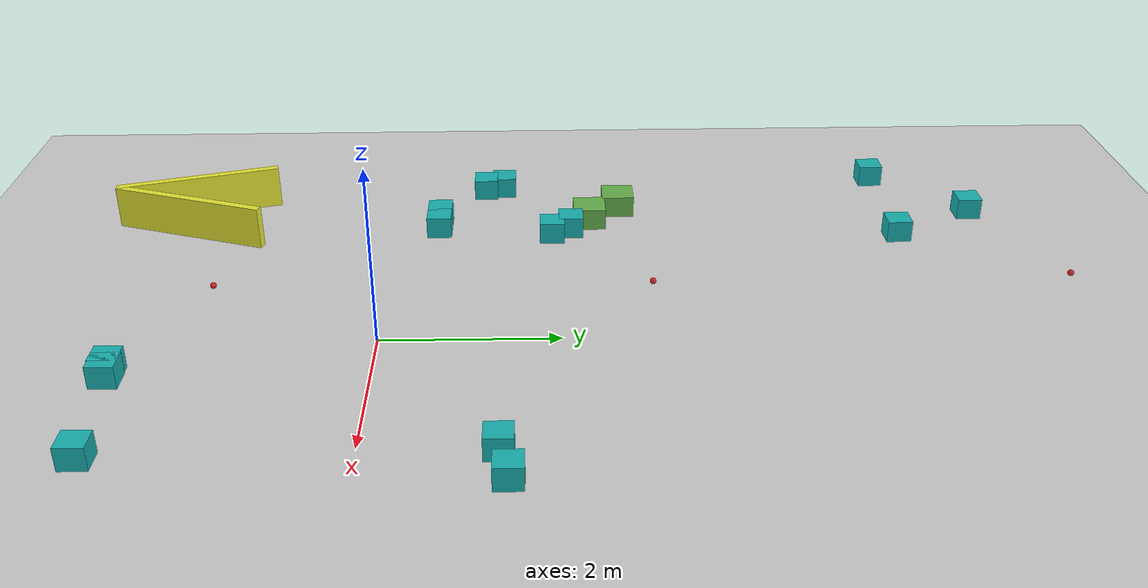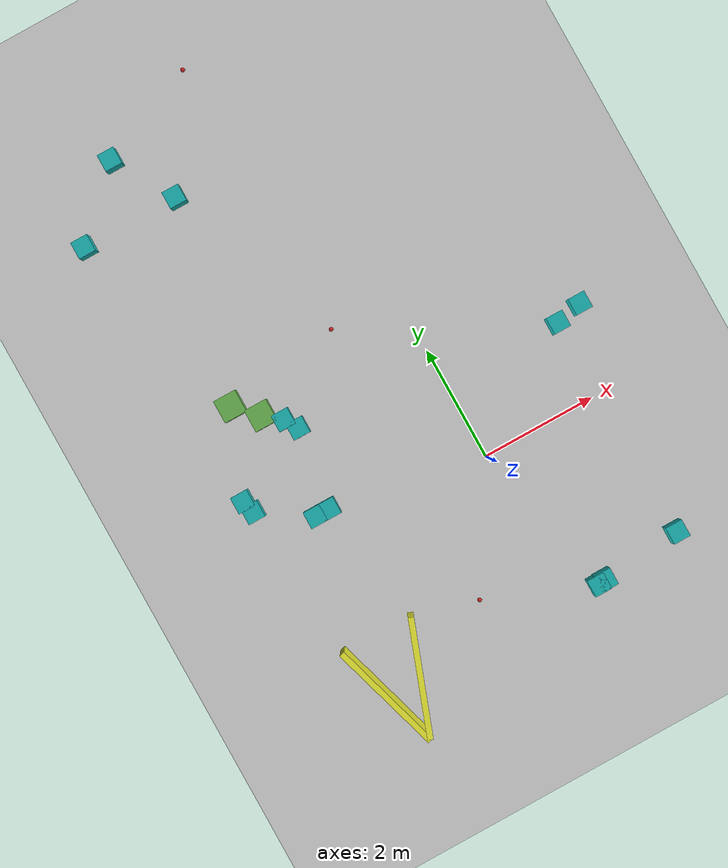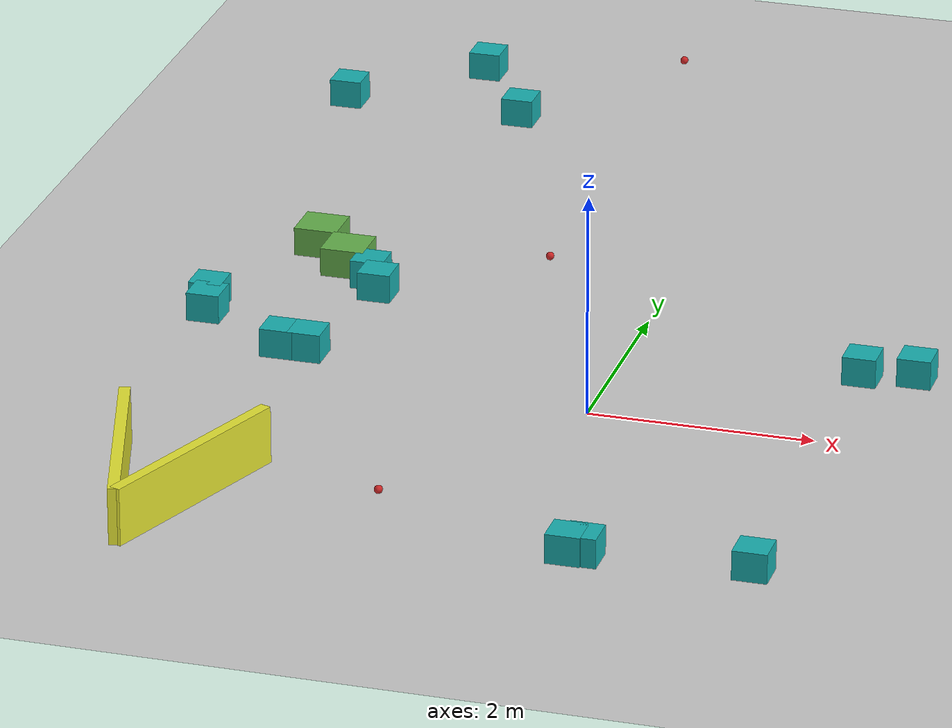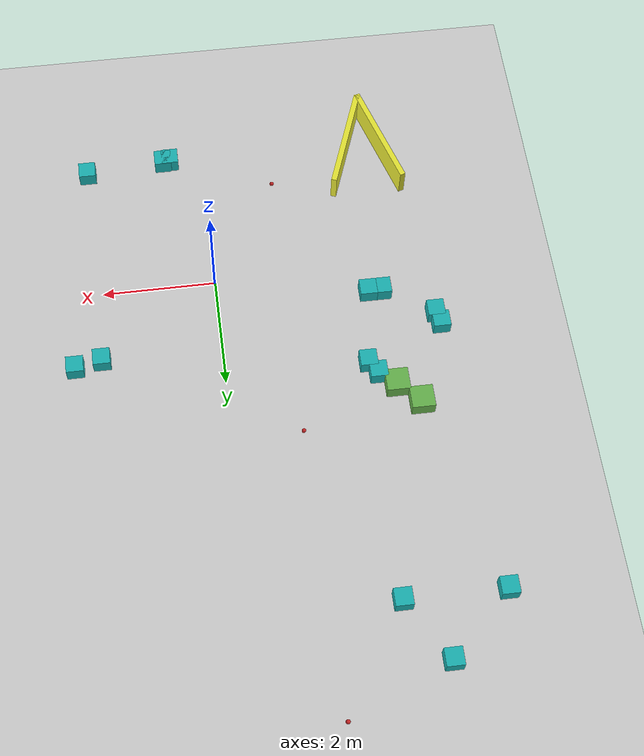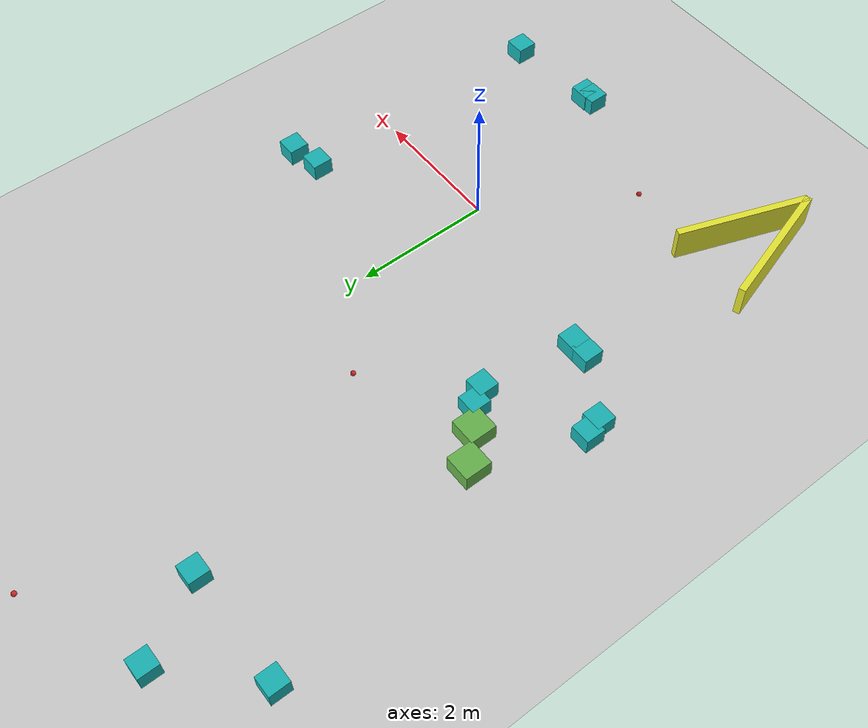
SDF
<sdf version="1.7">
 <world name="default">
  <model name="ground_plane">
   <static>1</static>
   <link name="link">
    <collision name="collision">
     <geometry><plane><normal>0 0 1</normal><size>100 100</size></plane></geometry>
     <surface><friction><ode><mu>100</mu><mu2>50</mu2></ode></friction></surface>
    </collision>
    <visual name="visual">
     <cast_shadows>0</cast_shadows>
     <geometry><plane><normal>0 0 1</normal><size>100 100</size></plane></geometry>
     <material>
      <script><uri>file://media/materials/scripts/gazebo.material</uri><name>Gazebo/Grey</name></script>
     </material>
    </visual>
   </link>
  </model>
  <model name="fl4sr_real_arena_8_target">
   <model name="target_ball_3">
    <link name="link">
     <pose>0 0 0.0375 0 -0 0</pose>
     <inertial>
      <mass>0.1467</mass>
      <inertia>
       <ixx>8.25187e-05</ixx>
       <ixy>0</ixy>
       <ixz>0</ixz>
       <iyy>8.25187e-05</iyy>
       <iyz>0</iyz>
       <izz>8.25187e-05</izz>
      </inertia>
     </inertial>
     <velocity_decay><linear>0</linear><angular>0.005</angular></velocity_decay>
     <visual name="visual">
      <geometry><sphere><radius>0.0375</radius></sphere></geometry>
      <material>
       <script><uri>file://media/materials/scripts/gazebo.material</uri><name>Gazebo/Red</name></script>
       <shader type="pixel"/>
      </material>
     </visual>
     <collision name="collision">
      <geometry><sphere><radius>0.0375</radius></sphere></geometry>
      <surface>
       <friction>
        <ode><mu>1</mu><mu2>1</mu2><fdir1>0 0 0</fdir1><slip1>0</slip1><slip2>0</slip2></ode>
        <torsional>
         <coefficient>1</coefficient>
         <patch_radius>0</patch_radius>
         <surface_radius>0.01</surface_radius>
         <use_patch_radius>0</use_patch_radius>
         <ode><slip>0</slip></ode>
        </torsional>
       </friction>
       <bounce><restitution_coefficient>0</restitution_coefficient><threshold>1e+06</threshold></bounce>
       <contact>
        <collide_without_contact>0</collide_without_contact>
        <collide_without_contact_bitmask>1</collide_without_contact_bitmask>
        <collide_bitmask>1</collide_bitmask>
        <ode>
         <soft_cfm>0</soft_cfm>
         <soft_erp>0.2</soft_erp>
         <kp>100000</kp>
         <kd>100</kd>
         <max_vel>100</max_vel>
         <min_depth>0.001</min_depth>
        </ode>
        <bullet>
         <split_impulse>1</split_impulse>
         <split_impulse_penetration_threshold>-0.01</split_impulse_penetration_threshold>
         <soft_cfm>0</soft_cfm>
         <soft_erp>0.2</soft_erp>
         <kp>100000</kp>
         <kd>100</kd>
        </bullet>
       </contact>
      </surface>
     </collision>
    </link>
    <static>0</static>
    <pose>-2.96569 7.16935 0 0 -0 0</pose>
   </model>
   <model name="target_ball_4">
    <link name="link">
     <pose>0 0 0.0375 0 -0 0</pose>
     <inertial>
      <mass>0.1467</mass>
      <inertia>
       <ixx>8.25187e-05</ixx>
       <ixy>0</ixy>
       <ixz>0</ixz>
       <iyy>8.25187e-05</iyy>
       <iyz>0</iyz>
       <izz>8.25187e-05</izz>
      </inertia>
     </inertial>
     <velocity_decay><linear>0</linear><angular>0.005</angular></velocity_decay>
     <visual name="visual">
      <geometry><sphere><radius>0.0375</radius></sphere></geometry>
      <material>
       <script><uri>file://media/materials/scripts/gazebo.material</uri><name>Gazebo/Red</name></script>
       <shader type="pixel"/>
      </material>
     </visual>
     <collision name="collision">
      <geometry><sphere><radius>0.0375</radius></sphere></geometry>
      <surface>
       <friction>
        <ode><mu>1</mu><mu2>1</mu2><fdir1>0 0 0</fdir1><slip1>0</slip1><slip2>0</slip2></ode>
        <torsional>
         <coefficient>1</coefficient>
         <patch_radius>0</patch_radius>
         <surface_radius>0.01</surface_radius>
         <use_patch_radius>0</use_patch_radius>
         <ode><slip>0</slip></ode>
        </torsional>
       </friction>
       <bounce><restitution_coefficient>0</restitution_coefficient><threshold>1e+06</threshold></bounce>
       <contact>
        <collide_without_contact>0</collide_without_contact>
        <collide_without_contact_bitmask>1</collide_without_contact_bitmask>
        <collide_bitmask>1</collide_bitmask>
        <ode>
         <soft_cfm>0</soft_cfm>
         <soft_erp>0.2</soft_erp>
         <kp>100000</kp>
         <kd>100</kd>
         <max_vel>100</max_vel>
         <min_depth>0.001</min_depth>
        </ode>
        <bullet>
         <split_impulse>1</split_impulse>
         <split_impulse_penetration_threshold>-0.01</split_impulse_penetration_threshold>
         <soft_cfm>0</soft_cfm>
         <soft_erp>0.2</soft_erp>
         <kp>100000</kp>
         <kd>100</kd>
        </bullet>
       </contact>
      </surface>
     </collision>
    </link>
    <static>0</static>
    <pose>-2.9061 2.23917 0 0 -0 0</pose>
   </model>
   <model name="target_ball_5">
    <link name="link">
     <pose>0 0 0.0375 0 -0 0</pose>
     <inertial>
      <mass>0.1467</mass>
      <inertia>
       <ixx>8.25187e-05</ixx>
       <ixy>0</ixy>
       <ixz>0</ixz>
       <iyy>8.25187e-05</iyy>
       <iyz>0</iyz>
       <izz>8.25187e-05</izz>
      </inertia>
     </inertial>
     <velocity_decay><linear>0</linear><angular>0.005</angular></velocity_decay>
     <visual name="visual">
      <geometry><sphere><radius>0.0375</radius></sphere></geometry>
      <material>
       <script><uri>file://media/materials/scripts/gazebo.material</uri><name>Gazebo/Red</name></script>
       <shader type="pixel"/>
      </material>
     </visual>
     <collision name="collision">
      <geometry><sphere><radius>0.0375</radius></sphere></geometry>
      <surface>
       <friction>
        <ode><mu>1</mu><mu2>1</mu2><fdir1>0 0 0</fdir1><slip1>0</slip1><slip2>0</slip2></ode>
        <torsional>
         <coefficient>1</coefficient>
         <patch_radius>0</patch_radius>
         <surface_radius>0.01</surface_radius>
         <use_patch_radius>0</use_patch_radius>
         <ode><slip>0</slip></ode>
        </torsional>
       </friction>
       <bounce><restitution_coefficient>0</restitution_coefficient><threshold>1e+06</threshold></bounce>
       <contact>
        <collide_without_contact>0</collide_without_contact>
        <collide_without_contact_bitmask>1</collide_without_contact_bitmask>
        <collide_bitmask>1</collide_bitmask>
        <ode>
         <soft_cfm>0</soft_cfm>
         <soft_erp>0.2</soft_erp>
         <kp>100000</kp>
         <kd>100</kd>
         <max_vel>100</max_vel>
         <min_depth>0.001</min_depth>
        </ode>
        <bullet>
         <split_impulse>1</split_impulse>
         <split_impulse_penetration_threshold>-0.01</split_impulse_penetration_threshold>
         <soft_cfm>0</soft_cfm>
         <soft_erp>0.2</soft_erp>
         <kp>100000</kp>
         <kd>100</kd>
        </bullet>
       </contact>
      </surface>
     </collision>
    </link>
    <static>0</static>
    <pose>-2.93744 -2.85263 0 0 -0 0</pose>
   </model>
   <static>0</static>
   <pose>1.69407 0.837481 0 0 -0 0</pose>
  </model>
  <model name="unit_box_0.3_heavy">
   <link name="link">
    <inertial>
     <mass>100</mass>
     <inertia><ixx>1.5</ixx><ixy>0</ixy><ixz>0</ixz><iyy>1.5</iyy><iyz>0</iyz><izz>1.5</izz></inertia>
    </inertial>
    <visual name="visual">
     <geometry><box><size>0.3 0.3 0.5</size></box></geometry>
     <material>
      <script><name>Gazebo/Grey</name><uri>file://media/materials/scripts/gazebo.material</uri></script>
      <shader type="pixel"><normal_map>__default__</normal_map></shader>
      <ambient>0.1 0.7 0.7 1</ambient>
      <diffuse>0.7 0.7 0.7 1</diffuse>
      <specular>0.01 0.01 0.01 1</specular>
      <emissive>0 0 0 1</emissive>
     </material>
    </visual>
    <collision name="collision">
     <geometry><box><size>0.3 0.3 0.5</size></box></geometry>
     <surface>
      <friction>
       <ode><mu>1</mu><mu2>1</mu2><fdir1>0 0 0</fdir1><slip1>0</slip1><slip2>0</slip2></ode>
       <torsional>
        <coefficient>1</coefficient>
        <patch_radius>0</patch_radius>
        <surface_radius>0</surface_radius>
        <use_patch_radius>1</use_patch_radius>
        <ode><slip>0</slip></ode>
       </torsional>
      </friction>
      <bounce><restitution_coefficient>0</restitution_coefficient><threshold>1e+06</threshold></bounce>
      <contact>
       <collide_without_contact>0</collide_without_contact>
       <collide_without_contact_bitmask>1</collide_without_contact_bitmask>
       <collide_bitmask>1</collide_bitmask>
       <ode>
        <soft_cfm>0</soft_cfm>
        <soft_erp>0.2</soft_erp>
        <kp>1e+13</kp>
        <kd>1</kd>
        <max_vel>0.01</max_vel>
        <min_depth>0</min_depth>
       </ode>
       <bullet>
        <split_impulse>1</split_impulse>
        <split_impulse_penetration_threshold>-0.01</split_impulse_penetration_threshold>
        <soft_cfm>0</soft_cfm>
        <soft_erp>0.2</soft_erp>
        <kp>1e+13</kp>
        <kd>1</kd>
       </bullet>
      </contact>
     </surface>
    </collision>
   </link>
   <static>1</static>
   <pose>2.55116 1.46104 0 0 -0 0</pose>
  </model>
  <model name="unit_box_0.3_heavy_clone">
   <link name="link">
    <inertial>
     <mass>100</mass>
     <inertia><ixx>1.5</ixx><ixy>0</ixy><ixz>0</ixz><iyy>1.5</iyy><iyz>0</iyz><izz>1.5</izz></inertia>
    </inertial>
    <visual name="visual">
     <geometry><box><size>0.3 0.3 0.5</size></box></geometry>
     <material>
      <script><name>Gazebo/Grey</name><uri>file://media/materials/scripts/gazebo.material</uri></script>
      <shader type="pixel"><normal_map>__default__</normal_map></shader>
      <ambient>0.1 0.7 0.7 1</ambient>
      <diffuse>0.7 0.7 0.7 1</diffuse>
      <specular>0.01 0.01 0.01 1</specular>
      <emissive>0 0 0 1</emissive>
     </material>
    </visual>
    <collision name="collision">
     <geometry><box><size>0.3 0.3 0.5</size></box></geometry>
     <surface>
      <friction>
       <ode><mu>1</mu><mu2>1</mu2><fdir1>0 0 0</fdir1><slip1>0</slip1><slip2>0</slip2></ode>
       <torsional>
        <coefficient>1</coefficient>
        <patch_radius>0</patch_radius>
        <surface_radius>0</surface_radius>
        <use_patch_radius>1</use_patch_radius>
        <ode><slip>0</slip></ode>
       </torsional>
      </friction>
      <bounce><restitution_coefficient>0</restitution_coefficient><threshold>1e+06</threshold></bounce>
      <contact>
       <collide_without_contact>0</collide_without_contact>
       <collide_without_contact_bitmask>1</collide_without_contact_bitmask>
       <collide_bitmask>1</collide_bitmask>
       <ode>
        <soft_cfm>0</soft_cfm>
        <soft_erp>0.2</soft_erp>
        <kp>1e+13</kp>
        <kd>1</kd>
        <max_vel>0.01</max_vel>
        <min_depth>0</min_depth>
       </ode>
       <bullet>
        <split_impulse>1</split_impulse>
        <split_impulse_penetration_threshold>-0.01</split_impulse_penetration_threshold>
        <soft_cfm>0</soft_cfm>
        <soft_erp>0.2</soft_erp>
        <kp>1e+13</kp>
        <kd>1</kd>
       </bullet>
      </contact>
     </surface>
    </collision>
   </link>
   <static>1</static>
   <pose>2.08884 1.36124 0 0 -0 0</pose>
  </model>
  <model name="unit_box_0.3_heavy_clone_0">
   <link name="link">
    <inertial>
     <mass>100</mass>
     <inertia><ixx>1.5</ixx><ixy>0</ixy><ixz>0</ixz><iyy>1.5</iyy><iyz>0</iyz><izz>1.5</izz></inertia>
    </inertial>
    <visual name="visual">
     <geometry><box><size>0.3 0.3 0.5</size></box></geometry>
     <material>
      <script><name>Gazebo/Grey</name><uri>file://media/materials/scripts/gazebo.material</uri></script>
      <shader type="pixel"><normal_map>__default__</normal_map></shader>
      <ambient>0.1 0.7 0.7 1</ambient>
      <diffuse>0.7 0.7 0.7 1</diffuse>
      <specular>0.01 0.01 0.01 1</specular>
      <emissive>0 0 0 1</emissive>
     </material>
    </visual>
    <collision name="collision">
     <geometry><box><size>0.3 0.3 0.5</size></box></geometry>
     <surface>
      <friction>
       <ode><mu>1</mu><mu2>1</mu2><fdir1>0 0 0</fdir1><slip1>0</slip1><slip2>0</slip2></ode>
       <torsional>
        <coefficient>1</coefficient>
        <patch_radius>0</patch_radius>
        <surface_radius>0</surface_radius>
        <use_patch_radius>1</use_patch_radius>
        <ode><slip>0</slip></ode>
       </torsional>
      </friction>
      <bounce><restitution_coefficient>0</restitution_coefficient><threshold>1e+06</threshold></bounce>
      <contact>
       <collide_without_contact>0</collide_without_contact>
       <collide_without_contact_bitmask>1</collide_without_contact_bitmask>
       <collide_bitmask>1</collide_bitmask>
       <ode>
        <soft_cfm>0</soft_cfm>
        <soft_erp>0.2</soft_erp>
        <kp>1e+13</kp>
        <kd>1</kd>
        <max_vel>0.01</max_vel>
        <min_depth>0</min_depth>
       </ode>
       <bullet>
        <split_impulse>1</split_impulse>
        <split_impulse_penetration_threshold>-0.01</split_impulse_penetration_threshold>
        <soft_cfm>0</soft_cfm>
        <soft_erp>0.2</soft_erp>
        <kp>1e+13</kp>
        <kd>1</kd>
       </bullet>
      </contact>
     </surface>
    </collision>
   </link>
   <static>1</static>
   <pose>2.12804 -2.58503 0 0 -0 0</pose>
  </model>
  <model name="unit_box_0.3_heavy_clone_7">
   <link name="link">
    <inertial>
     <mass>100</mass>
     <inertia><ixx>1.5</ixx><ixy>0</ixy><ixz>0</ixz><iyy>1.5</iyy><iyz>0</iyz><izz>1.5</izz></inertia>
    </inertial>
    <visual name="visual">
     <geometry><box><size>0.3 0.3 0.5</size></box></geometry>
     <material>
      <script><name>Gazebo/Grey</name><uri>file://media/materials/scripts/gazebo.material</uri></script>
      <shader type="pixel"><normal_map>__default__</normal_map></shader>
      <ambient>0.1 0.7 0.7 1</ambient>
      <diffuse>0.7 0.7 0.7 1</diffuse>
      <specular>0.01 0.01 0.01 1</specular>
      <emissive>0 0 0 1</emissive>
     </material>
    </visual>
    <collision name="collision">
     <geometry><box><size>0.3 0.3 0.5</size></box></geometry>
     <surface>
      <friction>
       <ode><mu>1</mu><mu2>1</mu2><fdir1>0 0 0</fdir1><slip1>0</slip1><slip2>0</slip2></ode>
       <torsional>
        <coefficient>1</coefficient>
        <patch_radius>0</patch_radius>
        <surface_radius>0</surface_radius>
        <use_patch_radius>1</use_patch_radius>
        <ode><slip>0</slip></ode>
       </torsional>
      </friction>
      <bounce><restitution_coefficient>0</restitution_coefficient><threshold>1e+06</threshold></bounce>
      <contact>
       <collide_without_contact>0</collide_without_contact>
       <collide_without_contact_bitmask>1</collide_without_contact_bitmask>
       <collide_bitmask>1</collide_bitmask>
       <ode>
        <soft_cfm>0</soft_cfm>
        <soft_erp>0.2</soft_erp>
        <kp>1e+13</kp>
        <kd>1</kd>
        <max_vel>0.01</max_vel>
        <min_depth>0</min_depth>
       </ode>
       <bullet>
        <split_impulse>1</split_impulse>
        <split_impulse_penetration_threshold>-0.01</split_impulse_penetration_threshold>
        <soft_cfm>0</soft_cfm>
        <soft_erp>0.2</soft_erp>
        <kp>1e+13</kp>
        <kd>1</kd>
       </bullet>
      </contact>
     </surface>
    </collision>
   </link>
   <static>1</static>
   <pose>0.588928 -2.71749 0 0 -0 0</pose>
  </model>
  <model name="unit_box_0.3_heavy_clone_8">
   <link name="link">
    <inertial>
     <mass>100</mass>
     <inertia><ixx>1.5</ixx><ixy>0</ixy><ixz>0</ixz><iyy>1.5</iyy><iyz>0</iyz><izz>1.5</izz></inertia>
    </inertial>
    <visual name="visual">
     <geometry><box><size>0.3 0.3 0.5</size></box></geometry>
     <material>
      <script><name>Gazebo/Grey</name><uri>file://media/materials/scripts/gazebo.material</uri></script>
      <shader type="pixel"><normal_map>__default__</normal_map></shader>
      <ambient>0.1 0.7 0.7 1</ambient>
      <diffuse>0.7 0.7 0.7 1</diffuse>
      <specular>0.01 0.01 0.01 1</specular>
      <emissive>0 0 0 1</emissive>
     </material>
    </visual>
    <collision name="collision">
     <geometry><box><size>0.3 0.3 0.5</size></box></geometry>
     <surface>
      <friction>
       <ode><mu>1</mu><mu2>1</mu2><fdir1>0 0 0</fdir1><slip1>0</slip1><slip2>0</slip2></ode>
       <torsional>
        <coefficient>1</coefficient>
        <patch_radius>0</patch_radius>
        <surface_radius>0</surface_radius>
        <use_patch_radius>1</use_patch_radius>
        <ode><slip>0</slip></ode>
       </torsional>
      </friction>
      <bounce><restitution_coefficient>0</restitution_coefficient><threshold>1e+06</threshold></bounce>
      <contact>
       <collide_without_contact>0</collide_without_contact>
       <collide_without_contact_bitmask>1</collide_without_contact_bitmask>
       <collide_bitmask>1</collide_bitmask>
       <ode>
        <soft_cfm>0</soft_cfm>
        <soft_erp>0.2</soft_erp>
        <kp>1e+13</kp>
        <kd>1</kd>
        <max_vel>0.01</max_vel>
        <min_depth>0</min_depth>
       </ode>
       <bullet>
        <split_impulse>1</split_impulse>
        <split_impulse_penetration_threshold>-0.01</split_impulse_penetration_threshold>
        <soft_cfm>0</soft_cfm>
        <soft_erp>0.2</soft_erp>
        <kp>1e+13</kp>
        <kd>1</kd>
       </bullet>
      </contact>
     </surface>
    </collision>
   </link>
   <static>1</static>
   <pose>0.721323 -2.7051 0 0 -0 0</pose>
  </model>
  <model name="unit_box_0.3_heavy_clone_clone">
   <link name="link">
    <inertial>
     <mass>100</mass>
     <inertia><ixx>1.5</ixx><ixy>0</ixy><ixz>0</ixz><iyy>1.5</iyy><iyz>0</iyz><izz>1.5</izz></inertia>
    </inertial>
    <visual name="visual">
     <geometry><box><size>0.3 0.3 0.5</size></box></geometry>
     <material>
      <script><name>Gazebo/Grey</name><uri>file://media/materials/scripts/gazebo.material</uri></script>
      <shader type="pixel"><normal_map>__default__</normal_map></shader>
      <ambient>0.1 0.7 0.7 1</ambient>
      <diffuse>0.7 0.7 0.7 1</diffuse>
      <specular>0.01 0.01 0.01 1</specular>
      <emissive>0 0 0 1</emissive>
     </material>
    </visual>
    <collision name="collision">
     <geometry><box><size>0.3 0.3 0.5</size></box></geometry>
     <surface>
      <friction>
       <ode><mu>1</mu><mu2>1</mu2><fdir1>0 0 0</fdir1><slip1>0</slip1><slip2>0</slip2></ode>
       <torsional>
        <coefficient>1</coefficient>
        <patch_radius>0</patch_radius>
        <surface_radius>0</surface_radius>
        <use_patch_radius>1</use_patch_radius>
        <ode><slip>0</slip></ode>
       </torsional>
      </friction>
      <bounce><restitution_coefficient>0</restitution_coefficient><threshold>1e+06</threshold></bounce>
      <contact>
       <collide_without_contact>0</collide_without_contact>
       <collide_without_contact_bitmask>1</collide_without_contact_bitmask>
       <collide_bitmask>1</collide_bitmask>
       <ode>
        <soft_cfm>0</soft_cfm>
        <soft_erp>0.2</soft_erp>
        <kp>1e+13</kp>
        <kd>1</kd>
        <max_vel>0.01</max_vel>
        <min_depth>0</min_depth>
       </ode>
       <bullet>
        <split_impulse>1</split_impulse>
        <split_impulse_penetration_threshold>-0.01</split_impulse_penetration_threshold>
        <soft_cfm>0</soft_cfm>
        <soft_erp>0.2</soft_erp>
        <kp>1e+13</kp>
        <kd>1</kd>
       </bullet>
      </contact>
     </surface>
    </collision>
   </link>
   <static>1</static>
   <pose>-3.0247 7.2506 0 0 -0 0</pose>
  </model>
  <model name="unit_box_0.3_heavy_clone_clone_0">
   <link name="link">
    <inertial>
     <mass>100</mass>
     <inertia><ixx>1.5</ixx><ixy>0</ixy><ixz>0</ixz><iyy>1.5</iyy><iyz>0</iyz><izz>1.5</izz></inertia>
    </inertial>
    <visual name="visual">
     <geometry><box><size>0.3 0.3 0.5</size></box></geometry>
     <material>
      <script><name>Gazebo/Grey</name><uri>file://media/materials/scripts/gazebo.material</uri></script>
      <shader type="pixel"><normal_map>__default__</normal_map></shader>
      <ambient>0.1 0.7 0.7 1</ambient>
      <diffuse>0.7 0.7 0.7 1</diffuse>
      <specular>0.01 0.01 0.01 1</specular>
      <emissive>0 0 0 1</emissive>
     </material>
    </visual>
    <collision name="collision">
     <geometry><box><size>0.3 0.3 0.5</size></box></geometry>
     <surface>
      <friction>
       <ode><mu>1</mu><mu2>1</mu2><fdir1>0 0 0</fdir1><slip1>0</slip1><slip2>0</slip2></ode>
       <torsional>
        <coefficient>1</coefficient>
        <patch_radius>0</patch_radius>
        <surface_radius>0</surface_radius>
        <use_patch_radius>1</use_patch_radius>
        <ode><slip>0</slip></ode>
       </torsional>
      </friction>
      <bounce><restitution_coefficient>0</restitution_coefficient><threshold>1e+06</threshold></bounce>
      <contact>
       <collide_without_contact>0</collide_without_contact>
       <collide_without_contact_bitmask>1</collide_without_contact_bitmask>
       <collide_bitmask>1</collide_bitmask>
       <ode>
        <soft_cfm>0</soft_cfm>
        <soft_erp>0.2</soft_erp>
        <kp>1e+13</kp>
        <kd>1</kd>
        <max_vel>0.01</max_vel>
        <min_depth>0</min_depth>
       </ode>
       <bullet>
        <split_impulse>1</split_impulse>
        <split_impulse_penetration_threshold>-0.01</split_impulse_penetration_threshold>
        <soft_cfm>0</soft_cfm>
        <soft_erp>0.2</soft_erp>
        <kp>1e+13</kp>
        <kd>1</kd>
       </bullet>
      </contact>
     </surface>
    </collision>
   </link>
   <static>1</static>
   <pose>-4.09696 6.21186 0 0 -0 0</pose>
  </model>
  <model name="unit_box_0.3_heavy_clone_clone_1">
   <link name="link">
    <inertial>
     <mass>100</mass>
     <inertia><ixx>1.5</ixx><ixy>0</ixy><ixz>0</ixz><iyy>1.5</iyy><iyz>0</iyz><izz>1.5</izz></inertia>
    </inertial>
    <visual name="visual">
     <geometry><box><size>0.3 0.3 0.5</size></box></geometry>
     <material>
      <script><name>Gazebo/Grey</name><uri>file://media/materials/scripts/gazebo.material</uri></script>
      <shader type="pixel"><normal_map>__default__</normal_map></shader>
      <ambient>0.1 0.7 0.7 1</ambient>
      <diffuse>0.7 0.7 0.7 1</diffuse>
      <specular>0.01 0.01 0.01 1</specular>
      <emissive>0 0 0 1</emissive>
     </material>
    </visual>
    <collision name="collision">
     <geometry><box><size>0.3 0.3 0.5</size></box></geometry>
     <surface>
      <friction>
       <ode><mu>1</mu><mu2>1</mu2><fdir1>0 0 0</fdir1><slip1>0</slip1><slip2>0</slip2></ode>
       <torsional>
        <coefficient>1</coefficient>
        <patch_radius>0</patch_radius>
        <surface_radius>0</surface_radius>
        <use_patch_radius>1</use_patch_radius>
        <ode><slip>0</slip></ode>
       </torsional>
      </friction>
      <bounce><restitution_coefficient>0</restitution_coefficient><threshold>1e+06</threshold></bounce>
      <contact>
       <collide_without_contact>0</collide_without_contact>
       <collide_without_contact_bitmask>1</collide_without_contact_bitmask>
       <collide_bitmask>1</collide_bitmask>
       <ode>
        <soft_cfm>0</soft_cfm>
        <soft_erp>0.2</soft_erp>
        <kp>1e+13</kp>
        <kd>1</kd>
        <max_vel>0.01</max_vel>
        <min_depth>0</min_depth>
       </ode>
       <bullet>
        <split_impulse>1</split_impulse>
        <split_impulse_penetration_threshold>-0.01</split_impulse_penetration_threshold>
        <soft_cfm>0</soft_cfm>
        <soft_erp>0.2</soft_erp>
        <kp>1e+13</kp>
        <kd>1</kd>
       </bullet>
      </contact>
     </surface>
    </collision>
   </link>
   <static>1</static>
   <pose>-2.39763 6.20785 0 0 -0 0</pose>
  </model>
  <model name="unit_box_0.3_heavy_clone_clone_2">
   <link name="link">
    <inertial>
     <mass>100</mass>
     <inertia><ixx>1.5</ixx><ixy>0</ixy><ixz>0</ixz><iyy>1.5</iyy><iyz>0</iyz><izz>1.5</izz></inertia>
    </inertial>
    <visual name="visual">
     <geometry><box><size>0.3 0.3 0.5</size></box></geometry>
     <material>
      <script><name>Gazebo/Grey</name><uri>file://media/materials/scripts/gazebo.material</uri></script>
      <shader type="pixel"><normal_map>__default__</normal_map></shader>
      <ambient>0.1 0.7 0.7 1</ambient>
      <diffuse>0.7 0.7 0.7 1</diffuse>
      <specular>0.01 0.01 0.01 1</specular>
      <emissive>0 0 0 1</emissive>
     </material>
    </visual>
    <collision name="collision">
     <geometry><box><size>0.3 0.3 0.5</size></box></geometry>
     <surface>
      <friction>
       <ode><mu>1</mu><mu2>1</mu2><fdir1>0 0 0</fdir1><slip1>0</slip1><slip2>0</slip2></ode>
       <torsional>
        <coefficient>1</coefficient>
        <patch_radius>0</patch_radius>
        <surface_radius>0</surface_radius>
        <use_patch_radius>1</use_patch_radius>
        <ode><slip>0</slip></ode>
       </torsional>
      </friction>
      <bounce><restitution_coefficient>0</restitution_coefficient><threshold>1e+06</threshold></bounce>
      <contact>
       <collide_without_contact>0</collide_without_contact>
       <collide_without_contact_bitmask>1</collide_without_contact_bitmask>
       <collide_bitmask>1</collide_bitmask>
       <ode>
        <soft_cfm>0</soft_cfm>
        <soft_erp>0.2</soft_erp>
        <kp>1e+13</kp>
        <kd>1</kd>
        <max_vel>0.01</max_vel>
        <min_depth>0</min_depth>
       </ode>
       <bullet>
        <split_impulse>1</split_impulse>
        <split_impulse_penetration_threshold>-0.01</split_impulse_penetration_threshold>
        <soft_cfm>0</soft_cfm>
        <soft_erp>0.2</soft_erp>
        <kp>1e+13</kp>
        <kd>1</kd>
       </bullet>
      </contact>
     </surface>
    </collision>
   </link>
   <static>1</static>
   <pose>-2.61463 2.15152 0 0 -0 0</pose>
  </model>
  <model name="unit_box_0.3_heavy_clone_clone_3">
   <link name="link">
    <inertial>
     <mass>100</mass>
     <inertia><ixx>1.5</ixx><ixy>0</ixy><ixz>0</ixz><iyy>1.5</iyy><iyz>0</iyz><izz>1.5</izz></inertia>
    </inertial>
    <visual name="visual">
     <geometry><box><size>0.3 0.3 0.5</size></box></geometry>
     <material>
      <script><name>Gazebo/Grey</name><uri>file://media/materials/scripts/gazebo.material</uri></script>
      <shader type="pixel"><normal_map>__default__</normal_map></shader>
      <ambient>0.1 0.7 0.7 1</ambient>
      <diffuse>0.7 0.7 0.7 1</diffuse>
      <specular>0.01 0.01 0.01 1</specular>
      <emissive>0 0 0 1</emissive>
     </material>
    </visual>
    <collision name="collision">
     <geometry><box><size>0.3 0.3 0.5</size></box></geometry>
     <surface>
      <friction>
       <ode><mu>1</mu><mu2>1</mu2><fdir1>0 0 0</fdir1><slip1>0</slip1><slip2>0</slip2></ode>
       <torsional>
        <coefficient>1</coefficient>
        <patch_radius>0</patch_radius>
        <surface_radius>0</surface_radius>
        <use_patch_radius>1</use_patch_radius>
        <ode><slip>0</slip></ode>
       </torsional>
      </friction>
      <bounce><restitution_coefficient>0</restitution_coefficient><threshold>1e+06</threshold></bounce>
      <contact>
       <collide_without_contact>0</collide_without_contact>
       <collide_without_contact_bitmask>1</collide_without_contact_bitmask>
       <collide_bitmask>1</collide_bitmask>
       <ode>
        <soft_cfm>0</soft_cfm>
        <soft_erp>0.2</soft_erp>
        <kp>1e+13</kp>
        <kd>1</kd>
        <max_vel>0.01</max_vel>
        <min_depth>0</min_depth>
       </ode>
       <bullet>
        <split_impulse>1</split_impulse>
        <split_impulse_penetration_threshold>-0.01</split_impulse_penetration_threshold>
        <soft_cfm>0</soft_cfm>
        <soft_erp>0.2</soft_erp>
        <kp>1e+13</kp>
        <kd>1</kd>
       </bullet>
      </contact>
     </surface>
    </collision>
   </link>
   <static>1</static>
   <pose>-3.84609 1.29928 0 0 -0 0</pose>
  </model>
  <model name="unit_box_0.3_heavy_clone_clone_4">
   <link name="link">
    <inertial>
     <mass>100</mass>
     <inertia><ixx>1.5</ixx><ixy>0</ixy><ixz>0</ixz><iyy>1.5</iyy><iyz>0</iyz><izz>1.5</izz></inertia>
    </inertial>
    <visual name="visual">
     <geometry><box><size>0.3 0.3 0.5</size></box></geometry>
     <material>
      <script><name>Gazebo/Grey</name><uri>file://media/materials/scripts/gazebo.material</uri></script>
      <shader type="pixel"><normal_map>__default__</normal_map></shader>
      <ambient>0.1 0.7 0.7 1</ambient>
      <diffuse>0.7 0.7 0.7 1</diffuse>
      <specular>0.01 0.01 0.01 1</specular>
      <emissive>0 0 0 1</emissive>
     </material>
    </visual>
    <collision name="collision">
     <geometry><box><size>0.3 0.3 0.5</size></box></geometry>
     <surface>
      <friction>
       <ode><mu>1</mu><mu2>1</mu2><fdir1>0 0 0</fdir1><slip1>0</slip1><slip2>0</slip2></ode>
       <torsional>
        <coefficient>1</coefficient>
        <patch_radius>0</patch_radius>
        <surface_radius>0</surface_radius>
        <use_patch_radius>1</use_patch_radius>
        <ode><slip>0</slip></ode>
       </torsional>
      </friction>
      <bounce><restitution_coefficient>0</restitution_coefficient><threshold>1e+06</threshold></bounce>
      <contact>
       <collide_without_contact>0</collide_without_contact>
       <collide_without_contact_bitmask>1</collide_without_contact_bitmask>
       <collide_bitmask>1</collide_bitmask>
       <ode>
        <soft_cfm>0</soft_cfm>
        <soft_erp>0.2</soft_erp>
        <kp>1e+13</kp>
        <kd>1</kd>
        <max_vel>0.01</max_vel>
        <min_depth>0</min_depth>
       </ode>
       <bullet>
        <split_impulse>1</split_impulse>
        <split_impulse_penetration_threshold>-0.01</split_impulse_penetration_threshold>
        <soft_cfm>0</soft_cfm>
        <soft_erp>0.2</soft_erp>
        <kp>1e+13</kp>
        <kd>1</kd>
       </bullet>
      </contact>
     </surface>
    </collision>
   </link>
   <static>1</static>
   <pose>-2.47359 1.91605 0 0 -0 0</pose>
  </model>
  <model name="unit_box_0.3_heavy_clone_clone_5">
   <link name="link">
    <inertial>
     <mass>100</mass>
     <inertia><ixx>1.5</ixx><ixy>0</ixy><ixz>0</ixz><iyy>1.5</iyy><iyz>0</iyz><izz>1.5</izz></inertia>
    </inertial>
    <visual name="visual">
     <geometry><box><size>0.3 0.3 0.5</size></box></geometry>
     <material>
      <script><name>Gazebo/Grey</name><uri>file://media/materials/scripts/gazebo.material</uri></script>
      <shader type="pixel"><normal_map>__default__</normal_map></shader>
      <ambient>0.1 0.7 0.7 1</ambient>
      <diffuse>0.7 0.7 0.7 1</diffuse>
      <specular>0.01 0.01 0.01 1</specular>
      <emissive>0 0 0 1</emissive>
     </material>
    </visual>
    <collision name="collision">
     <geometry><box><size>0.3 0.3 0.5</size></box></geometry>
     <surface>
      <friction>
       <ode><mu>1</mu><mu2>1</mu2><fdir1>0 0 0</fdir1><slip1>0</slip1><slip2>0</slip2></ode>
       <torsional>
        <coefficient>1</coefficient>
        <patch_radius>0</patch_radius>
        <surface_radius>0</surface_radius>
        <use_patch_radius>1</use_patch_radius>
        <ode><slip>0</slip></ode>
       </torsional>
      </friction>
      <bounce><restitution_coefficient>0</restitution_coefficient><threshold>1e+06</threshold></bounce>
      <contact>
       <collide_without_contact>0</collide_without_contact>
       <collide_without_contact_bitmask>1</collide_without_contact_bitmask>
       <collide_bitmask>1</collide_bitmask>
       <ode>
        <soft_cfm>0</soft_cfm>
        <soft_erp>0.2</soft_erp>
        <kp>1e+13</kp>
        <kd>1</kd>
        <max_vel>0.01</max_vel>
        <min_depth>0</min_depth>
       </ode>
       <bullet>
        <split_impulse>1</split_impulse>
        <split_impulse_penetration_threshold>-0.01</split_impulse_penetration_threshold>
        <soft_cfm>0</soft_cfm>
        <soft_erp>0.2</soft_erp>
        <kp>1e+13</kp>
        <kd>1</kd>
       </bullet>
      </contact>
     </surface>
    </collision>
   </link>
   <static>1</static>
   <pose>-3.78741 1.06644 0 0 -0 0</pose>
  </model>
  <model name="unit_box_0.4_heavy_clone_1">
   <link name="link">
    <inertial>
     <mass>100</mass>
     <inertia><ixx>1.5</ixx><ixy>0</ixy><ixz>0</ixz><iyy>1.5</iyy><iyz>0</iyz><izz>1.5</izz></inertia>
    </inertial>
    <visual name="visual">
     <geometry><box><size>0.4 0.4 0.5</size></box></geometry>
     <material>
      <script><name>Gazebo/Grey</name><uri>file://media/materials/scripts/gazebo.material</uri></script>
      <shader type="pixel"><normal_map>__default__</normal_map></shader>
      <ambient>0.4 0.7 0.3 1</ambient>
      <diffuse>0.7 0.7 0.7 1</diffuse>
      <specular>0.01 0.01 0.01 1</specular>
      <emissive>0 0 0 1</emissive>
     </material>
    </visual>
    <collision name="collision">
     <geometry><box><size>0.4 0.4 0.5</size></box></geometry>
     <surface>
      <friction>
       <ode><mu>1</mu><mu2>1</mu2><fdir1>0 0 0</fdir1><slip1>0</slip1><slip2>0</slip2></ode>
       <torsional>
        <coefficient>1</coefficient>
        <patch_radius>0</patch_radius>
        <surface_radius>0</surface_radius>
        <use_patch_radius>1</use_patch_radius>
        <ode><slip>0</slip></ode>
       </torsional>
      </friction>
      <bounce><restitution_coefficient>0</restitution_coefficient><threshold>1e+06</threshold></bounce>
      <contact>
       <collide_without_contact>0</collide_without_contact>
       <collide_without_contact_bitmask>1</collide_without_contact_bitmask>
       <collide_bitmask>1</collide_bitmask>
       <ode>
        <soft_cfm>0</soft_cfm>
        <soft_erp>0.2</soft_erp>
        <kp>1e+13</kp>
        <kd>1</kd>
        <max_vel>0.01</max_vel>
        <min_depth>0</min_depth>
       </ode>
       <bullet>
        <split_impulse>1</split_impulse>
        <split_impulse_penetration_threshold>-0.01</split_impulse_penetration_threshold>
        <soft_cfm>0</soft_cfm>
        <soft_erp>0.2</soft_erp>
        <kp>1e+13</kp>
        <kd>1</kd>
       </bullet>
      </contact>
     </surface>
    </collision>
   </link>
   <static>1</static>
   <pose>-2.90233 2.3897 0 0 -0 0</pose>
  </model>
  <model name="unit_box_0.4_heavy_clone_2">
   <link name="link">
    <inertial>
     <mass>100</mass>
     <inertia><ixx>1.5</ixx><ixy>0</ixy><ixz>0</ixz><iyy>1.5</iyy><iyz>0</iyz><izz>1.5</izz></inertia>
    </inertial>
    <visual name="visual">
     <geometry><box><size>0.4 0.4 0.5</size></box></geometry>
     <material>
      <script><name>Gazebo/Grey</name><uri>file://media/materials/scripts/gazebo.material</uri></script>
      <shader type="pixel"><normal_map>__default__</normal_map></shader>
      <ambient>0.4 0.7 0.3 1</ambient>
      <diffuse>0.7 0.7 0.7 1</diffuse>
      <specular>0.01 0.01 0.01 1</specular>
      <emissive>0 0 0 1</emissive>
     </material>
    </visual>
    <collision name="collision">
     <geometry><box><size>0.4 0.4 0.5</size></box></geometry>
     <surface>
      <friction>
       <ode><mu>1</mu><mu2>1</mu2><fdir1>0 0 0</fdir1><slip1>0</slip1><slip2>0</slip2></ode>
       <torsional>
        <coefficient>1</coefficient>
        <patch_radius>0</patch_radius>
        <surface_radius>0</surface_radius>
        <use_patch_radius>1</use_patch_radius>
        <ode><slip>0</slip></ode>
       </torsional>
      </friction>
      <bounce><restitution_coefficient>0</restitution_coefficient><threshold>1e+06</threshold></bounce>
      <contact>
       <collide_without_contact>0</collide_without_contact>
       <collide_without_contact_bitmask>1</collide_without_contact_bitmask>
       <collide_bitmask>1</collide_bitmask>
       <ode>
        <soft_cfm>0</soft_cfm>
        <soft_erp>0.2</soft_erp>
        <kp>1e+13</kp>
        <kd>1</kd>
        <max_vel>0.01</max_vel>
        <min_depth>0</min_depth>
       </ode>
       <bullet>
        <split_impulse>1</split_impulse>
        <split_impulse_penetration_threshold>-0.01</split_impulse_penetration_threshold>
        <soft_cfm>0</soft_cfm>
        <soft_erp>0.2</soft_erp>
        <kp>1e+13</kp>
        <kd>1</kd>
       </bullet>
      </contact>
     </surface>
    </collision>
   </link>
   <static>1</static>
   <pose>-3.27007 2.7643 0 0 -0 0</pose>
  </model>
  <model name="wooden_wall_2_heavy_clone_1">
   <link name="link_1">
    <inertial>
     <mass>100</mass>
     <inertia><ixx>8.41667</ixx><ixy>0</ixy><ixz>0</ixz><iyy>41.6667</iyy><iyz>0</iyz><izz>33.4167</izz></inertia>
    </inertial>
    <visual name="visual">
     <geometry><box><size>2 0.1 1</size></box></geometry>
     <material>
      <lighting>1</lighting>
      <script><uri>file://media/materials/scripts/gazebo.material</uri><name>Gazebo/Grey</name></script>
      <shader type="pixel"><normal_map>__default__</normal_map></shader>
      <ambient>0.9 0.9 0.2 1</ambient>
      <diffuse>0.7 0.7 0.7 1</diffuse>
      <specular>0.01 0.01 0.01 1</specular>
      <emissive>0 0 0 1</emissive>
     </material>
    </visual>
    <collision name="collision">
     <geometry><box><size>2 0.1 1</size></box></geometry>
     <surface>
      <friction>
       <ode><mu>1</mu><mu2>1</mu2><fdir1>0 0 0</fdir1><slip1>0</slip1><slip2>0</slip2></ode>
       <torsional>
        <coefficient>1</coefficient>
        <patch_radius>0</patch_radius>
        <surface_radius>0</surface_radius>
        <use_patch_radius>1</use_patch_radius>
        <ode><slip>0</slip></ode>
       </torsional>
      </friction>
      <bounce><restitution_coefficient>0</restitution_coefficient><threshold>1e+06</threshold></bounce>
      <contact>
       <collide_without_contact>0</collide_without_contact>
       <collide_without_contact_bitmask>1</collide_without_contact_bitmask>
       <collide_bitmask>1</collide_bitmask>
       <ode>
        <soft_cfm>0</soft_cfm>
        <soft_erp>0.2</soft_erp>
        <kp>1e+13</kp>
        <kd>1</kd>
        <max_vel>0.01</max_vel>
        <min_depth>0</min_depth>
       </ode>
       <bullet>
        <split_impulse>1</split_impulse>
        <split_impulse_penetration_threshold>-0.01</split_impulse_penetration_threshold>
        <soft_cfm>0</soft_cfm>
        <soft_erp>0.2</soft_erp>
        <kp>1e+13</kp>
        <kd>1</kd>
       </bullet>
      </contact>
     </surface>
    </collision>
   </link>
   <static>1</static>
   <allow_auto_disable>0</allow_auto_disable>
   <pose>-2.68934 -2.58391 0 0 -0 1.22167</pose>
  </model>
  <model name="wooden_wall_2_heavy_clone_2_clone">
   <link name="link_1">
    <inertial>
     <mass>100</mass>
     <inertia><ixx>8.41667</ixx><ixy>0</ixy><ixz>0</ixz><iyy>41.6667</iyy><iyz>0</iyz><izz>33.4167</izz></inertia>
    </inertial>
    <visual name="visual">
     <geometry><box><size>2 0.1 1</size></box></geometry>
     <material>
      <lighting>1</lighting>
      <script><uri>file://media/materials/scripts/gazebo.material</uri><name>Gazebo/Grey</name></script>
      <shader type="pixel"><normal_map>__default__</normal_map></shader>
      <ambient>0.9 0.9 0.2 1</ambient>
      <diffuse>0.7 0.7 0.7 1</diffuse>
      <specular>0.01 0.01 0.01 1</specular>
      <emissive>0 0 0 1</emissive>
     </material>
    </visual>
    <collision name="collision">
     <geometry><box><size>2 0.1 1</size></box></geometry>
     <surface>
      <friction>
       <ode><mu>1</mu><mu2>1</mu2><fdir1>0 0 0</fdir1><slip1>0</slip1><slip2>0</slip2></ode>
       <torsional>
        <coefficient>1</coefficient>
        <patch_radius>0</patch_radius>
        <surface_radius>0</surface_radius>
        <use_patch_radius>1</use_patch_radius>
        <ode><slip>0</slip></ode>
       </torsional>
      </friction>
      <bounce><restitution_coefficient>0</restitution_coefficient><threshold>1e+06</threshold></bounce>
      <contact>
       <collide_without_contact>0</collide_without_contact>
       <collide_without_contact_bitmask>1</collide_without_contact_bitmask>
       <collide_bitmask>1</collide_bitmask>
       <ode>
        <soft_cfm>0</soft_cfm>
        <soft_erp>0.2</soft_erp>
        <kp>1e+13</kp>
        <kd>1</kd>
        <max_vel>0.01</max_vel>
        <min_depth>0</min_depth>
       </ode>
       <bullet>
        <split_impulse>1</split_impulse>
        <split_impulse_penetration_threshold>-0.01</split_impulse_penetration_threshold>
        <soft_cfm>0</soft_cfm>
        <soft_erp>0.2</soft_erp>
        <kp>1e+13</kp>
        <kd>1</kd>
       </bullet>
      </contact>
     </surface>
    </collision>
   </link>
   <static>1</static>
   <allow_auto_disable>0</allow_auto_disable>
   <pose>-3.32244 -2.57989 0 0 -0 1.86135</pose>
  </model>
  <model name="unit_box_0.3_heavy_clone_clone_3_clone_clone_3">
   <link name="link">
    <inertial>
     <mass>100</mass>
     <inertia><ixx>1.5</ixx><ixy>0</ixy><ixz>0</ixz><iyy>1.5</iyy><iyz>0</iyz><izz>1.5</izz></inertia>
    </inertial>
    <visual name="visual">
     <geometry><box><size>0.3 0.3 0.5</size></box></geometry>
     <material>
      <script><name>Gazebo/Grey</name><uri>file://media/materials/scripts/gazebo.material</uri></script>
      <shader type="pixel"><normal_map>__default__</normal_map></shader>
      <ambient>0.1 0.7 0.7 1</ambient>
      <diffuse>0.7 0.7 0.7 1</diffuse>
      <specular>0.01 0.01 0.01 1</specular>
      <emissive>0 0 0 1</emissive>
     </material>
    </visual>
    <collision name="collision">
     <geometry><box><size>0.3 0.3 0.5</size></box></geometry>
     <surface>
      <friction>
       <ode><mu>1</mu><mu2>1</mu2><fdir1>0 0 0</fdir1><slip1>0</slip1><slip2>0</slip2></ode>
       <torsional>
        <coefficient>1</coefficient>
        <patch_radius>0</patch_radius>
        <surface_radius>0</surface_radius>
        <use_patch_radius>1</use_patch_radius>
        <ode><slip>0</slip></ode>
       </torsional>
      </friction>
      <bounce><restitution_coefficient>0</restitution_coefficient><threshold>1e+06</threshold></bounce>
      <contact>
       <collide_without_contact>0</collide_without_contact>
       <collide_without_contact_bitmask>1</collide_without_contact_bitmask>
       <collide_bitmask>1</collide_bitmask>
       <ode>
        <soft_cfm>0</soft_cfm>
        <soft_erp>0.2</soft_erp>
        <kp>1e+13</kp>
        <kd>1</kd>
        <max_vel>0.01</max_vel>
        <min_depth>0</min_depth>
       </ode>
       <bullet>
        <split_impulse>1</split_impulse>
        <split_impulse_penetration_threshold>-0.01</split_impulse_penetration_threshold>
        <soft_cfm>0</soft_cfm>
        <soft_erp>0.2</soft_erp>
        <kp>1e+13</kp>
        <kd>1</kd>
       </bullet>
      </contact>
     </surface>
    </collision>
   </link>
   <static>1</static>
   <pose>-2.92606 0.512199 0 0 -0 0</pose>
  </model>
  <model name="unit_box_0.3_heavy_clone_clone_3_clone_clone_4">
   <link name="link">
    <inertial>
     <mass>100</mass>
     <inertia><ixx>1.5</ixx><ixy>0</ixy><ixz>0</ixz><iyy>1.5</iyy><iyz>0</iyz><izz>1.5</izz></inertia>
    </inertial>
    <visual name="visual">
     <geometry><box><size>0.3 0.3 0.5</size></box></geometry>
     <material>
      <script><name>Gazebo/Grey</name><uri>file://media/materials/scripts/gazebo.material</uri></script>
      <shader type="pixel"><normal_map>__default__</normal_map></shader>
      <ambient>0.1 0.7 0.7 1</ambient>
      <diffuse>0.7 0.7 0.7 1</diffuse>
      <specular>0.01 0.01 0.01 1</specular>
      <emissive>0 0 0 1</emissive>
     </material>
    </visual>
    <collision name="collision">
     <geometry><box><size>0.3 0.3 0.5</size></box></geometry>
     <surface>
      <friction>
       <ode><mu>1</mu><mu2>1</mu2><fdir1>0 0 0</fdir1><slip1>0</slip1><slip2>0</slip2></ode>
       <torsional>
        <coefficient>1</coefficient>
        <patch_radius>0</patch_radius>
        <surface_radius>0</surface_radius>
        <use_patch_radius>1</use_patch_radius>
        <ode><slip>0</slip></ode>
       </torsional>
      </friction>
      <bounce><restitution_coefficient>0</restitution_coefficient><threshold>1e+06</threshold></bounce>
      <contact>
       <collide_without_contact>0</collide_without_contact>
       <collide_without_contact_bitmask>1</collide_without_contact_bitmask>
       <collide_bitmask>1</collide_bitmask>
       <ode>
        <soft_cfm>0</soft_cfm>
        <soft_erp>0.2</soft_erp>
        <kp>1e+13</kp>
        <kd>1</kd>
        <max_vel>0.01</max_vel>
        <min_depth>0</min_depth>
       </ode>
       <bullet>
        <split_impulse>1</split_impulse>
        <split_impulse_penetration_threshold>-0.01</split_impulse_penetration_threshold>
        <soft_cfm>0</soft_cfm>
        <soft_erp>0.2</soft_erp>
        <kp>1e+13</kp>
        <kd>1</kd>
       </bullet>
      </contact>
     </surface>
    </collision>
   </link>
   <static>1</static>
   <pose>-2.67156 0.512274 0 0 -0 0</pose>
  </model>
 </world>
</sdf>
